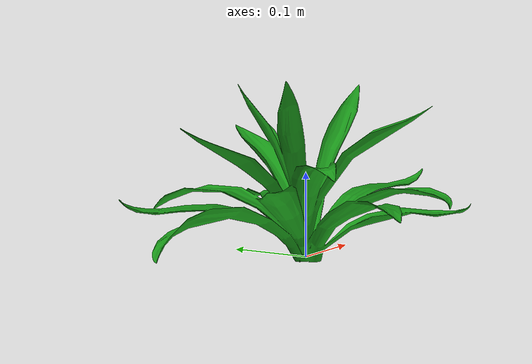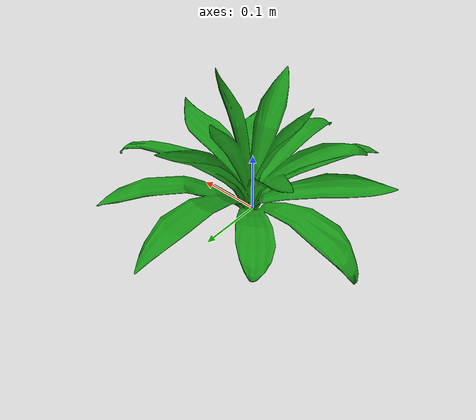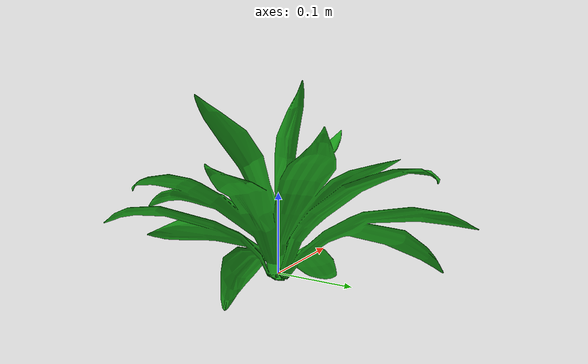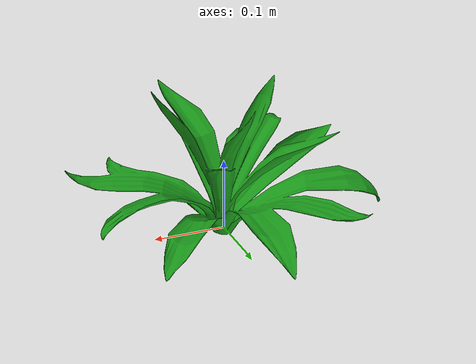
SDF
<?xml version="1.0" ?>
<sdf version="1.6">
  <model name="weed">
    <static>true</static>
    <link name="link">
      <visual name="visual">
        <geometry>
          <mesh>
            <uri>model://weed/meshes/weed.dae</uri>
            <scale>0.4 0.4 0.4</scale>
          </mesh>
        </geometry>
        <material>
          <ambient>0.1 0.5 0.1 1</ambient>
          <diffuse>0.1 0.6 0.1 1</diffuse>
        </material>
      </visual>
    </link>
  </model>
</sdf>
